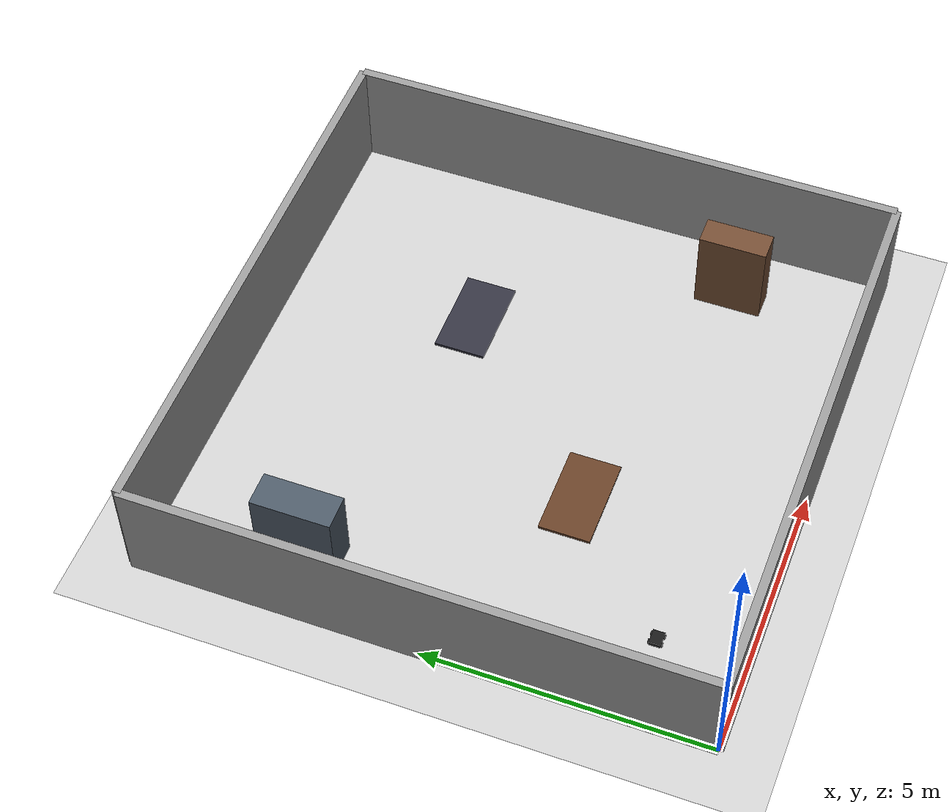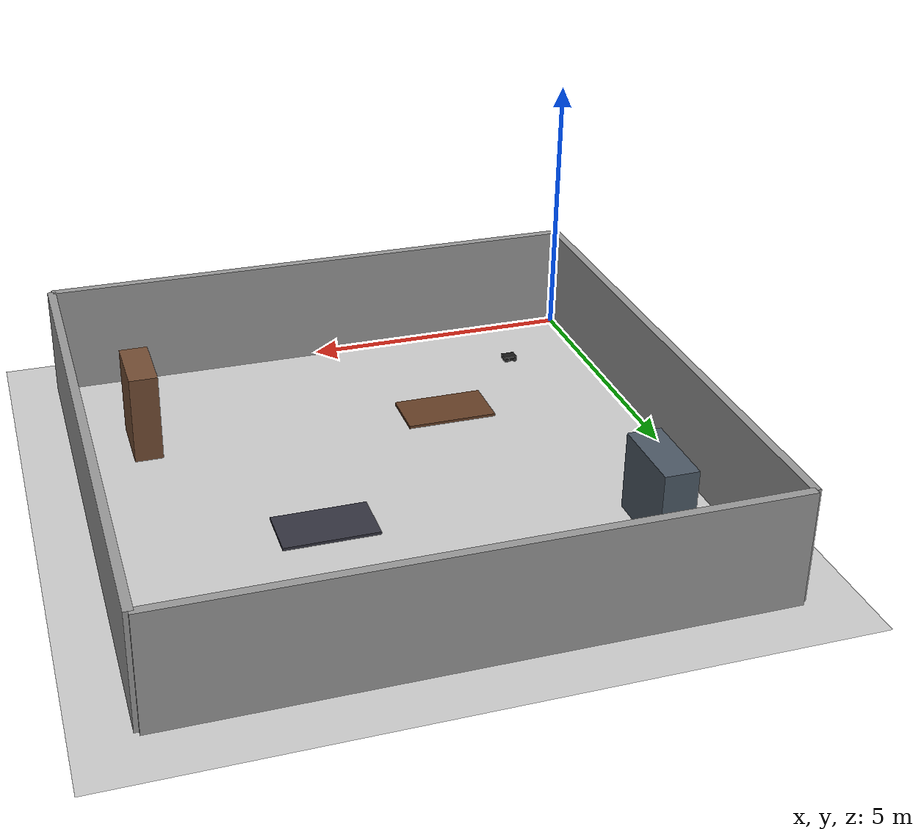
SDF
<?xml version="1.0" ?>
<sdf version="1.6">
  <world name="multisensor_rf_arena">
    <physics name="1ms" type="ignored">
      <max_step_size>0.005</max_step_size>
      <real_time_factor>1.0</real_time_factor>
    </physics>

    <plugin filename="ignition-gazebo-physics-system" name="ignition::gazebo::systems::Physics"></plugin>
    <plugin filename="ignition-gazebo-user-commands-system" name="ignition::gazebo::systems::UserCommands"></plugin>
    <plugin filename="ignition-gazebo-scene-broadcaster-system" name="ignition::gazebo::systems::SceneBroadcaster"></plugin>

    <!-- Sun Light -->
    <light type="directional" name="sun">
      <cast_shadows>true</cast_shadows>
      <pose>0 0 10 0 0 0</pose>
      <diffuse>0.8 0.8 0.8 1</diffuse>
      <specular>0.2 0.2 0.2 1</specular>
      <attenuation>
        <range>1000</range>
        <constant>0.9</constant>
        <linear>0.01</linear>
        <quadratic>0.001</quadratic>
      </attenuation>
      <direction>-0.5 0.1 -0.9</direction>
    </light>

    <!-- Ground Plane -->
    <model name="ground_plane">
      <static>true</static>
      <link name="link">
        <collision name="collision">
          <geometry><plane><normal>0 0 1</normal><size>20 20</size></plane></geometry>
        </collision>
        <visual name="visual">
          <geometry><plane><normal>0 0 1</normal><size>20 20</size></plane></geometry>
          <material>
            <ambient>0.8 0.8 0.8 1</ambient>
            <diffuse>0.8 0.8 0.8 1</diffuse>
          </material>
        </visual>
      </link>
    </model>

    <!-- Perimeter Room Outer Walls -->
    <model name="room_wall_south">
      <static>true</static><pose>5 0 1 0 0 0</pose>
      <link name="link">
        <collision name="col"><geometry><box><size>10 0.15 2.0</size></box></geometry></collision>
        <visual name="vis"><geometry><box><size>10 0.15 2.0</size></box></geometry><material><ambient>0.6 0.6 0.6 1</ambient></material></visual>
      </link>
    </model>

    <model name="room_wall_north">
      <static>true</static><pose>5 10 1 0 0 0</pose>
      <link name="link">
        <collision name="col"><geometry><box><size>10 0.15 2.0</size></box></geometry></collision>
        <visual name="vis"><geometry><box><size>10 0.15 2.0</size></box></geometry><material><ambient>0.6 0.6 0.6 1</ambient></material></visual>
      </link>
    </model>

    <model name="room_wall_west">
      <static>true</static><pose>0 5 1 0 0 0</pose>
      <link name="link">
        <collision name="col"><geometry><box><size>0.15 10 2.0</size></box></geometry></collision>
        <visual name="vis"><geometry><box><size>0.15 10 2.0</size></box></geometry><material><ambient>0.6 0.6 0.6 1</ambient></material></visual>
      </link>
    </model>

    <model name="room_wall_east">
      <static>true</static><pose>10 5 1 0 0 0</pose>
      <link name="link">
        <collision name="col"><geometry><box><size>0.15 10 2.0</size></box></geometry></collision>
        <visual name="vis"><geometry><box><size>0.15 10 2.0</size></box></geometry><material><ambient>0.6 0.6 0.6 1</ambient></material></visual>
      </link>
    </model>

    <!-- REAL-WORLD INDOOR FURNITURE -->

    <!-- Office Conference Table 1 at (3.5, 3.5) -->
    <model name="office_table_1">
      <static>true</static><pose>3.5 3.5 0.375 0 0 0</pose>
      <link name="top">
        <collision name="c"><geometry><box><size>1.6 0.9 0.05</size></box></geometry></collision>
        <visual name="v"><geometry><box><size>1.6 0.9 0.05</size></box></geometry><material><ambient>0.4 0.25 0.15 1</ambient></material></visual>
      </link>
    </model>

    <!-- Office Conference Table 2 at (6.5, 6.5) -->
    <model name="office_table_2">
      <static>true</static><pose>6.5 6.5 0.375 0 0 0</pose>
      <link name="top">
        <collision name="c"><geometry><box><size>1.6 0.9 0.05</size></box></geometry></collision>
        <visual name="v"><geometry><box><size>1.6 0.9 0.05</size></box></geometry><material><ambient>0.2 0.2 0.25 1</ambient></material></visual>
      </link>
    </model>

    <!-- Lab Storage Cabinet at (1.2, 7.5) -->
    <model name="storage_cabinet">
      <static>true</static><pose>1.2 7.5 0.70 0 0 0</pose>
      <link name="cabinet">
        <collision name="c"><geometry><box><size>0.6 1.4 1.4</size></box></geometry></collision>
        <visual name="v"><geometry><box><size>0.6 1.4 1.4</size></box></geometry><material><ambient>0.3 0.35 0.4 1</ambient></material></visual>
      </link>
    </model>

    <!-- Bookshelf Unit at (8.8, 2.5) -->
    <model name="bookshelf_unit">
      <static>true</static><pose>8.8 2.5 0.80 0 0 0</pose>
      <link name="shelf">
        <collision name="c"><geometry><box><size>0.5 1.2 1.6</size></box></geometry></collision>
        <visual name="v"><geometry><box><size>0.5 1.2 1.6</size></box></geometry><material><ambient>0.45 0.3 0.2 1</ambient></material></visual>
      </link>
    </model>

    <!-- ROVER ROBOT MODEL EMBEDDED IN WORLD -->
    <model name="multisensor_fusion_rover">
      <pose>1.5 1.5 0.08 0 0 0</pose>

      <link name="base_footprint"><pose>0 0 0 0 0 0</pose></link>

      <link name="base_link">
        <pose>0 0 0.05 0 0 0</pose>
        <inertial><mass>3.5</mass><inertia><ixx>0.02</ixx><iyy>0.02</iyy><izz>0.03</izz></inertia></inertial>
        <collision name="chassis_collision"><geometry><box><size>0.25 0.20 0.08</size></box></geometry></collision>
        <visual name="chassis_visual"><geometry><box><size>0.25 0.20 0.08</size></box></geometry><material><ambient>0.1 0.1 0.1 1</ambient></material></visual>
      </link>

      <joint name="base_footprint_joint" type="fixed">
        <parent>base_footprint</parent><child>base_link</child>
      </joint>

      <!-- Wheels -->
      <link name="front_left_wheel">
        <pose>0.08 0.11 0.04 -1.570796 0 0</pose>
        <collision name="col"><geometry><cylinder><radius>0.04</radius><length>0.025</length></cylinder></geometry></collision>
        <visual name="vis"><geometry><cylinder><radius>0.04</radius><length>0.025</length></cylinder></geometry><material><ambient>0.2 0.2 0.2 1</ambient></material></visual>
      </link>
      <joint name="front_left_wheel_joint" type="revolute">
        <parent>base_link</parent><child>front_left_wheel</child><axis><xyz>0 0 1</xyz></axis>
      </joint>

      <link name="front_right_wheel">
        <pose>0.08 -0.11 0.04 -1.570796 0 0</pose>
        <collision name="col"><geometry><cylinder><radius>0.04</radius><length>0.025</length></cylinder></geometry></collision>
        <visual name="vis"><geometry><cylinder><radius>0.04</radius><length>0.025</length></cylinder></geometry><material><ambient>0.2 0.2 0.2 1</ambient></material></visual>
      </link>
      <joint name="front_right_wheel_joint" type="revolute">
        <parent>base_link</parent><child>front_right_wheel</child><axis><xyz>0 0 1</xyz></axis>
      </joint>

      <link name="rear_left_wheel">
        <pose>-0.08 0.11 0.04 -1.570796 0 0</pose>
        <collision name="col"><geometry><cylinder><radius>0.04</radius><length>0.025</length></cylinder></geometry></collision>
        <visual name="vis"><geometry><cylinder><radius>0.04</radius><length>0.025</length></cylinder></geometry><material><ambient>0.2 0.2 0.2 1</ambient></material></visual>
      </link>
      <joint name="rear_left_wheel_joint" type="revolute">
        <parent>base_link</parent><child>rear_left_wheel</child><axis><xyz>0 0 1</xyz></axis>
      </joint>

      <link name="rear_right_wheel">
        <pose>-0.08 -0.11 0.04 -1.570796 0 0</pose>
        <collision name="col"><geometry><cylinder><radius>0.04</radius><length>0.025</length></cylinder></geometry></collision>
        <visual name="vis"><geometry><cylinder><radius>0.04</radius><length>0.025</length></cylinder></geometry><material><ambient>0.2 0.2 0.2 1</ambient></material></visual>
      </link>
      <joint name="rear_right_wheel_joint" type="revolute">
        <parent>base_link</parent><child>rear_right_wheel</child><axis><xyz>0 0 1</xyz></axis>
      </joint>

      <!-- Diff Drive Plugin -->
      <plugin filename="ignition-gazebo-diff-drive-system" name="ignition::gazebo::systems::DiffDrive">
        <left_joint>front_left_wheel_joint</left_joint>
        <left_joint>rear_left_wheel_joint</left_joint>
        <right_joint>front_right_wheel_joint</right_joint>
        <right_joint>rear_right_wheel_joint</right_joint>
        <wheel_separation>0.22</wheel_separation>
        <wheel_radius>0.04</wheel_radius>
        <odom_publish_frequency>30</odom_publish_frequency>
        <topic>/cmd_vel</topic>
        <odom_topic>/odom</odom_topic>
        <frame_id>odom</frame_id>
        <child_frame_id>base_footprint</child_frame_id>
      </plugin>
    </model>

  </world>
</sdf>
